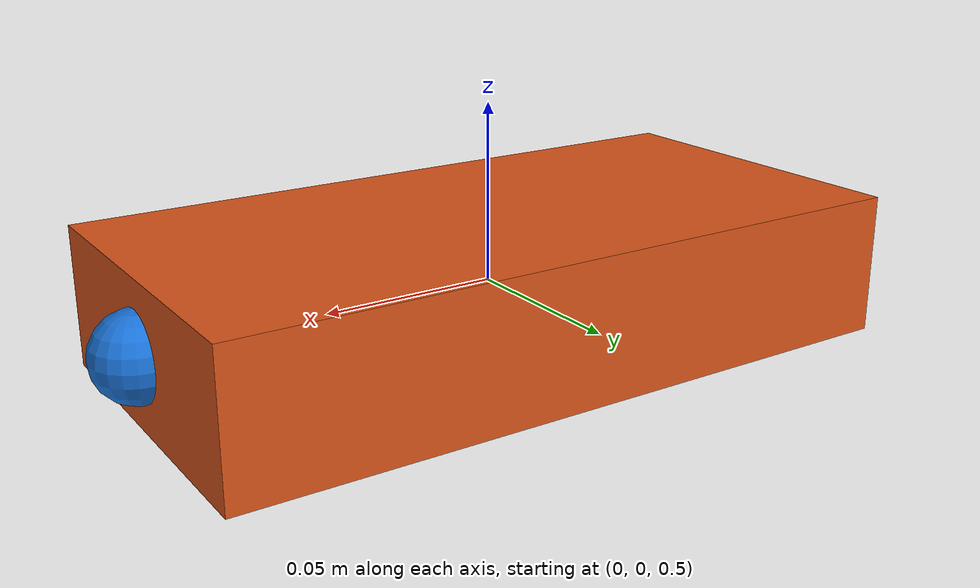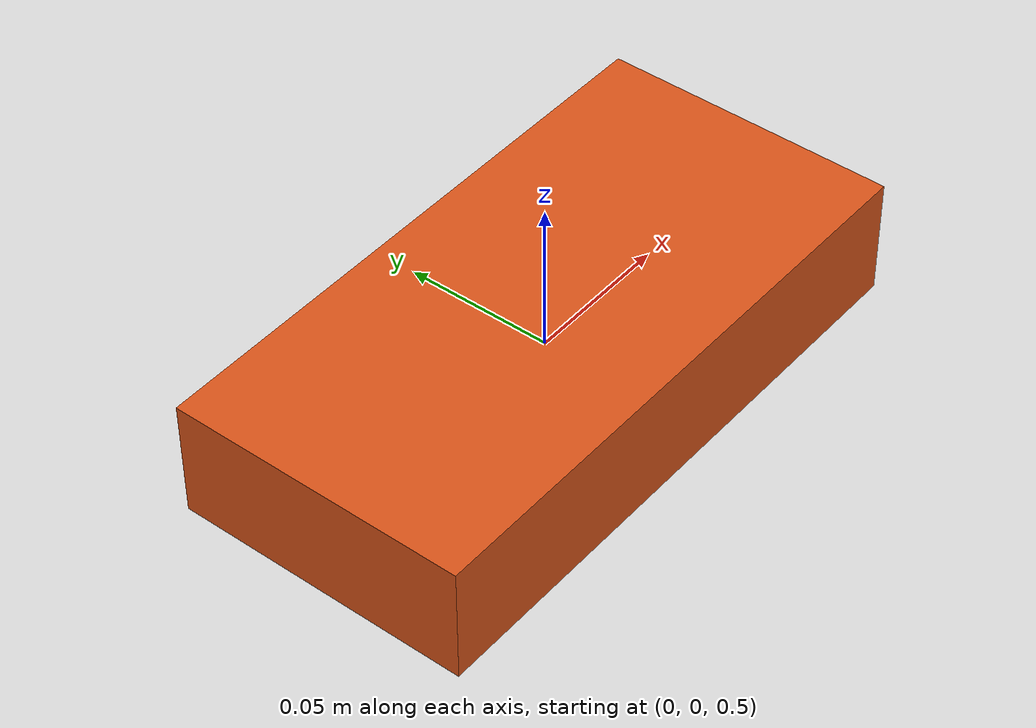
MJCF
<mujoco model="tumbling_box">
  <compiler angle="radian" autolimits="true"/>
  <option timestep="0.002" gravity="0 0 0" integrator="RK4"/>
  <visual>
    <global offwidth="640" offheight="480"/>
  </visual>
  <worldbody>
    <light pos="0 -1 2" dir="0 0.5 -1"/>
    <body name="box" pos="0 0 0.5">
      <freejoint name="box"/>
      <geom name="box" type="box" size="0.1 0.05 0.02" mass="1" rgba=".85 .33 .1 1" contype="0" conaffinity="0"/>
      <geom name="marker" type="sphere" pos="0.1 0 0" size="0.012" mass="0" rgba=".1 .45 .85 1" contype="0" conaffinity="0"/>
    </body>
  </worldbody>
  <keyframe>
    <!-- spin 6 rad/s about the intermediate axis (body y), with a 1e-3 rad/s nudge about x -->
    <key name="intermediate" qvel="0 0 0  0.001 6 0"/>
    <key name="major" qvel="0 0 0  0 0.001 6"/>
  </keyframe>
</mujoco>
